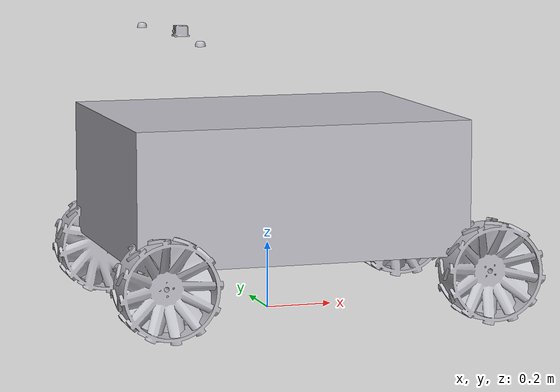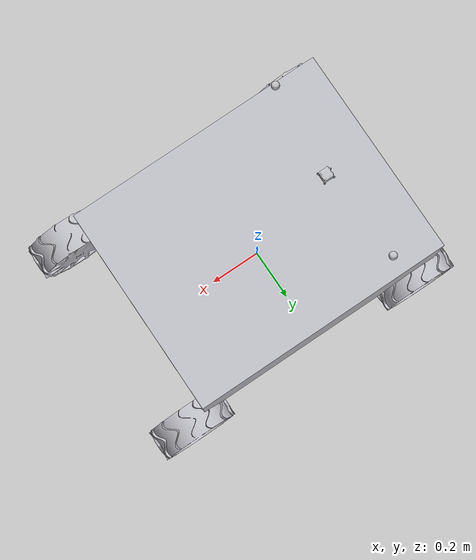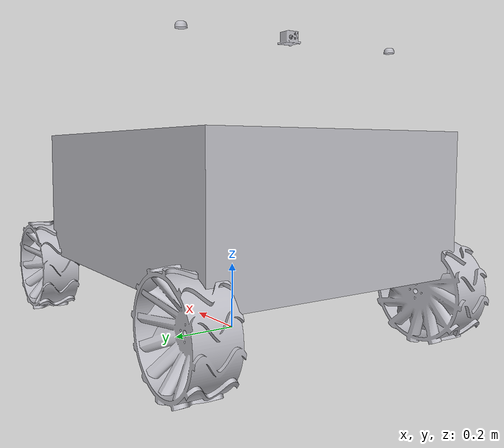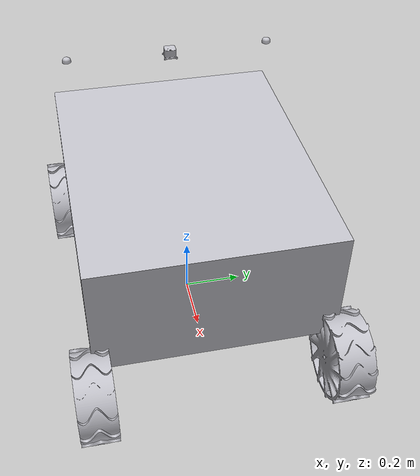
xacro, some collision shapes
<?xml version="1.0"?>
<robot name="drubotara" xmlns:xacro="http://www.ros.org/wiki/xacro">

<xacro:property name="mesh_path" value="package://uirover_description/meshes" />

<link name="base_link">
  <inertial>
    <origin xyz="-0.041814202474443105 -0.0019618715262042174 0.6193247013374815" rpy="0 0 0"/>
    <mass value="36.39044123390723"/>
    <inertia ixx="6.03199" iyy="7.702627" izz="5.299368" ixy="0.023767" iyz="-0.013389" ixz="1.64321"/>
  </inertial>
  <visual>
    <origin xyz="0 0 0" rpy="0 0 0"/>
    <geometry>
      <mesh filename="${mesh_path}/base_link.stl" scale="0.001 0.001 0.001"/>
    </geometry>
    <material name="silver"/>
  </visual>
  <collision>
    <origin xyz="0.0 0.0 0.4" rpy="0 0 0"/>
    <geometry>
      <box size="1.0 0.8 0.4"/>
    </geometry>
  </collision>
</link>

<link name="wheel_fl">
  <inertial>
    <origin xyz="3.7696796749253636e-05 -0.013990696409831527 9.916211229921146e-08" rpy="0 0 0"/>
    <mass value="3.6608099590512784"/>
    <inertia ixx="0.023653" iyy="0.0409" izz="0.023653" ixy="-4.6e-05" iyz="0.0" ixz="0.0"/>
  </inertial>
  <visual>
    <origin xyz="-0.560952 -0.402778 -0.152136" rpy="0 0 0"/>
    <geometry>
      <mesh filename="${mesh_path}/wheel_1_1.stl" scale="0.001 0.001 0.001"/>
    </geometry>
    <material name="silver"/>
  </visual>
  <collision>
    <origin xyz="0 0 0" rpy="1.5708 0 0"/>
    <geometry>
      <cylinder radius="0.152" length="0.1"/>
    </geometry>
  </collision>
</link>

<link name="wheel_bl">
  <inertial>
    <origin xyz="-0.0001380586105538817 -0.013990286963790344 1.321317391611565e-07" rpy="0 0 0"/>
    <mass value="3.6608098509080222"/>
    <inertia ixx="0.023654" iyy="0.040898" izz="0.023653" ixy="0.000171" iyz="0.0" ixz="-0.0"/>
  </inertial>
  <visual>
    <origin xyz="0.417255 -0.402775 -0.152136" rpy="0 0 0"/>
    <geometry>
      <mesh filename="${mesh_path}/wheel_2_1.stl" scale="0.001 0.001 0.001"/>
    </geometry>
    <material name="silver"/>
  </visual>
  <collision>
    <origin xyz="0 0 0" rpy="1.5708 0 0"/>
    <geometry>
      <cylinder radius="0.152" length="0.1"/>
    </geometry>
  </collision>
</link>

<link name="wheel_fr">
  <inertial>
    <origin xyz="3.769679674670012e-05 0.013991269285021646 9.916212437288685e-08" rpy="0 0 0"/>
    <mass value="3.660809959044042"/>
    <inertia ixx="0.023653" iyy="0.0409" izz="0.023653" ixy="4.6e-05" iyz="-0.0" ixz="0.0"/>
  </inertial>
  <visual>
    <origin xyz="-0.560952 0.405607 -0.152136" rpy="0 0 0"/>
    <geometry>
      <mesh filename="${mesh_path}/wheel_3_1.stl" scale="0.001 0.001 0.001"/>
    </geometry>
    <material name="silver"/>
  </visual>
  <collision>
    <origin xyz="0 0 0" rpy="1.5708 0 0"/>
    <geometry>
      <cylinder radius="0.152" length="0.1"/>
    </geometry>
  </collision>
</link>

<link name="wheel_br">
  <inertial>
    <origin xyz="-0.00013805861055471436 0.013990859838980463 1.3213175284465528e-07" rpy="0 0 0"/>
    <mass value="3.6608098509007836"/>
    <inertia ixx="0.023654" iyy="0.040898" izz="0.023653" ixy="-0.000171" iyz="-0.0" ixz="-0.0"/>
  </inertial>
  <visual>
    <origin xyz="0.417255 0.405604 -0.152136" rpy="0 0 0"/>
    <geometry>
      <mesh filename="${mesh_path}/wheel_4_1.stl" scale="0.001 0.001 0.001"/>
    </geometry>
    <material name="silver"/>
  </visual>
  <collision>
    <origin xyz="0 0 0" rpy="1.5708 0 0"/>
    <geometry>
      <cylinder radius="0.152" length="0.1"/>
    </geometry>
  </collision>
</link>

<link name="zed2i_base_link">
  <inertial>
    <origin xyz="-0.0038644930255475884 -0.00046519988354149487 0.014942744960595" rpy="0 0 0"/>
    <mass value="1.3266544034835752"/>
    <inertia ixx="0.003059" iyy="0.000258" izz="0.003122" ixy="7e-06" iyz="0.0" ixz="-1e-06"/>
  </inertial>
  <visual>
    <origin xyz="-0.4775 0.001498 -0.537" rpy="0 0 0"/>
    <geometry>
      <mesh filename="${mesh_path}/ZED2i_1.stl" scale="0.001 0.001 0.001"/>
    </geometry>
    <material name="silver"/>
  </visual>
  <collision>
    <origin xyz="-0.4775 0.001498 -0.537" rpy="0 0 0"/>
    <geometry>
      <mesh filename="${mesh_path}/ZED2i_1.stl" scale="0.001 0.001 0.001"/>
    </geometry>
  </collision>
</link>

<link name="zed2i_camera_center"/>

<link name="zed2i_left_camera_frame"/>

<link name="zed2i_left_camera_optical_frame"/>

<link name="zed2i_right_camera_frame"/>

<link name="zed2i_right_camera_optical_frame"/>

<link name="imu_link">
  <inertial>
    <origin xyz="0.2485 0.020914 -0.830149" rpy="0 0 0"/>
    <mass value="0.1"/>
    <inertia ixx="0.001" iyy="0.001" izz="0.001" ixy="0.0" iyz="0.0" ixz="0.0"/>
  </inertial>
  <visual>
    <origin xyz="0.2485 0.020914 -0.830149" rpy="0 0 0"/>
    <geometry>
      <mesh filename="${mesh_path}/ELLIPSE-D-B-Gen3_v2_1.stl" scale="0.001 0.001 0.001"/>
    </geometry>
    <material name="silver"/>
  </visual>
  <collision>
    <origin xyz="0.2485 0.020914 -0.830149" rpy="0 0 0"/>
    <geometry>
      <mesh filename="${mesh_path}/ELLIPSE-D-B-Gen3_v2_1.stl" scale="0.001 0.001 0.001"/>
    </geometry>
  </collision>
</link>

<link name="gps_link">
  <inertial>
    <origin xyz="0.2485 0.020914 -0.830149" rpy="0 0 0"/>
    <mass value="0.1"/>
    <inertia ixx="0.001" iyy="0.001" izz="0.001" ixy="0.0" iyz="0.0" ixz="0.0"/>
  </inertial>
  <visual>
    <origin xyz="0.2485 0.020914 -0.830149" rpy="0 0 0"/>
    <geometry>
      <mesh filename="${mesh_path}/ELLIPSE-D-B-Gen3_v2_1.stl" scale="0.001 0.001 0.001"/>
    </geometry>
    <material name="silver"/>
  </visual>
  <collision>
    <origin xyz="0.2485 0.020914 -0.830149" rpy="0 0 0"/>
    <geometry>
      <mesh filename="${mesh_path}/ELLIPSE-D-B-Gen3_v2_1.stl" scale="0.001 0.001 0.001"/>
    </geometry>
  </collision>
</link>

<link name="antenna_1">
  <inertial>
    <origin xyz="2.275957200481571e-15 -2.1356236129532746e-07 0.0064851534857001125" rpy="0 0 0"/>
    <mass value="0.013335005852757369"/>
    <inertia ixx="1e-06" iyy="1e-06" izz="1e-06" ixy="0.0" iyz="0.0" ixz="0.0"/>
  </inertial>
  <visual>
    <origin xyz="0.3 0.346414 -0.830149" rpy="0 0 0"/>
    <geometry>
      <mesh filename="${mesh_path}/Antena_1_1.stl" scale="0.001 0.001 0.001"/>
    </geometry>
    <material name="silver"/>
  </visual>
  <collision>
    <origin xyz="0.3 0.346414 -0.830149" rpy="0 0 0"/>
    <geometry>
      <mesh filename="${mesh_path}/Antena_1_1.stl" scale="0.001 0.001 0.001"/>
    </geometry>
  </collision>
</link>

<link name="antenna_2">
  <inertial>
    <origin xyz="1.9984014443252818e-15 -2.13562358186703e-07 0.006485153485689454" rpy="0 0 0"/>
    <mass value="0.013335005852757365"/>
    <inertia ixx="1e-06" iyy="1e-06" izz="1e-06" ixy="0.0" iyz="-0.0" ixz="0.0"/>
  </inertial>
  <visual>
    <origin xyz="0.3 -0.343586 -0.830149" rpy="0 0 0"/>
    <geometry>
      <mesh filename="${mesh_path}/Antena_2_1.stl" scale="0.001 0.001 0.001"/>
    </geometry>
    <material name="silver"/>
  </visual>
  <collision>
    <origin xyz="0.3 -0.343586 -0.830149" rpy="0 0 0"/>
    <geometry>
      <mesh filename="${mesh_path}/Antena_2_1.stl" scale="0.001 0.001 0.001"/>
    </geometry>
  </collision>
</link>

<!-- Joints -->
<joint name="fl_wheel_joint" type="continuous">
  <origin xyz="0.560952 0.402778 0.152136" rpy="0 0 0"/>
  <parent link="base_link"/>
  <child link="wheel_fl"/>
  <axis xyz="0 1 0"/>
</joint>

<joint name="fr_wheel_joint" type="continuous">
  <origin xyz="0.560952 -0.405607 0.152136" rpy="0 0 0"/>
  <parent link="base_link"/>
  <child link="wheel_fr"/>
  <axis xyz="0 1 0"/>
</joint>

<joint name="bl_wheel_joint" type="continuous">
  <origin xyz="-0.417255 0.402775 0.152136" rpy="0 0 0"/>
  <parent link="base_link"/>
  <child link="wheel_bl"/>
  <axis xyz="0 1 0"/>
</joint>

<joint name="br_wheel_joint" type="continuous">
  <origin xyz="-0.417255 -0.405604 0.152136" rpy="0 0 0"/>
  <parent link="base_link"/>
  <child link="wheel_br"/>
  <axis xyz="0 1 0"/>
</joint>

<joint name="zed2i_base_joint" type="fixed">
  <origin xyz="0.4775 -0.001498 0.537" rpy="0 0 0"/>
  <parent link="base_link"/>
  <child link="zed2i_base_link"/>
</joint>

<joint name="zed2i_camera_center_joint" type="fixed">
  <origin xyz="0.0 0.0 0.0" rpy="0 0 0"/>
  <parent link="zed2i_base_link"/>
  <child link="zed2i_camera_center"/>
</joint>

<joint name="zed2i_left_camera_joint" type="fixed">
  <origin xyz="0.0 0.06 0.0" rpy="0 0 0"/>
  <parent link="zed2i_camera_center"/>
  <child link="zed2i_left_camera_frame"/>
</joint>

<joint name="zed2i_left_camera_optical_joint" type="fixed">
  <origin xyz="0.0 0.0 0.0" rpy="-1.5708 0.0 -1.5708"/>
  <parent link="zed2i_left_camera_frame"/>
  <child link="zed2i_left_camera_optical_frame"/>
</joint>

<joint name="zed2i_right_camera_joint" type="fixed">
  <origin xyz="0.0 -0.06 0.0" rpy="0 0 0"/>
  <parent link="zed2i_camera_center"/>
  <child link="zed2i_right_camera_frame"/>
</joint>

<joint name="zed2i_right_camera_optical_joint" type="fixed">
  <origin xyz="0.0 0.0 0.0" rpy="-1.5708 0.0 -1.5708"/>
  <parent link="zed2i_right_camera_frame"/>
  <child link="zed2i_right_camera_optical_frame"/>
</joint>

<joint name="imu_joint" type="fixed">
  <origin xyz="-0.2485 -0.020914 0.830149" rpy="0 0 0"/>
  <parent link="base_link"/>
  <child link="imu_link"/>
</joint>

<joint name="gps_joint" type="fixed">
  <origin xyz="-0.2485 -0.020914 0.830149" rpy="0 0 0"/>
  <parent link="base_link"/>
  <child link="gps_link"/>
</joint>

<joint name="antenna_1_joint" type="fixed">
  <origin xyz="-0.3 -0.346414 0.830149" rpy="0 0 0"/>
  <parent link="base_link"/>
  <child link="antenna_1"/>
</joint>

<joint name="antenna_2_joint" type="fixed">
  <origin xyz="-0.3 0.343586 0.830149" rpy="0 0 0"/>
  <parent link="base_link"/>
  <child link="antenna_2"/>
</joint>

</robot>
